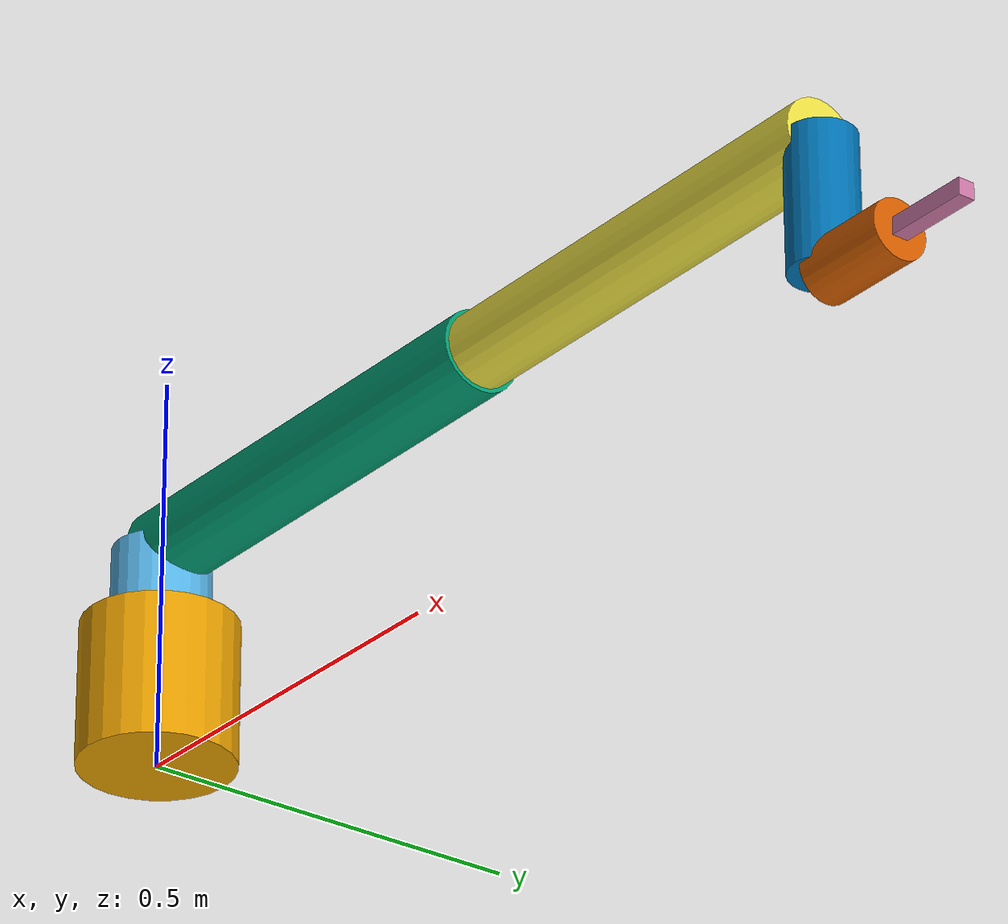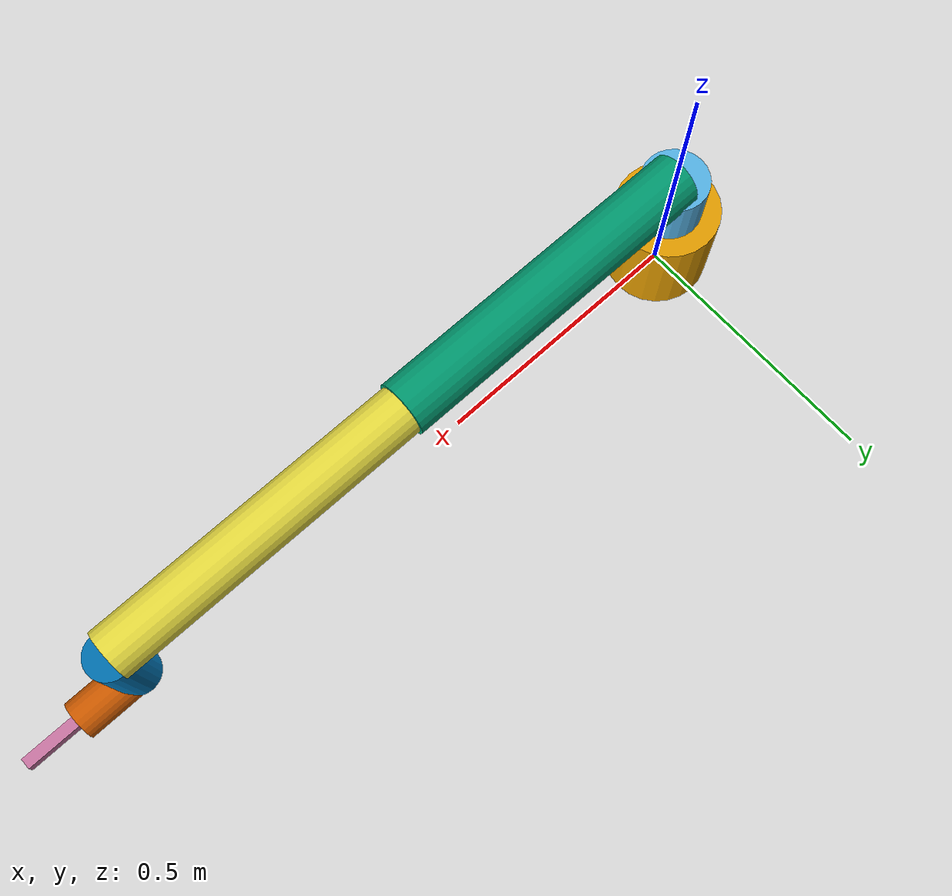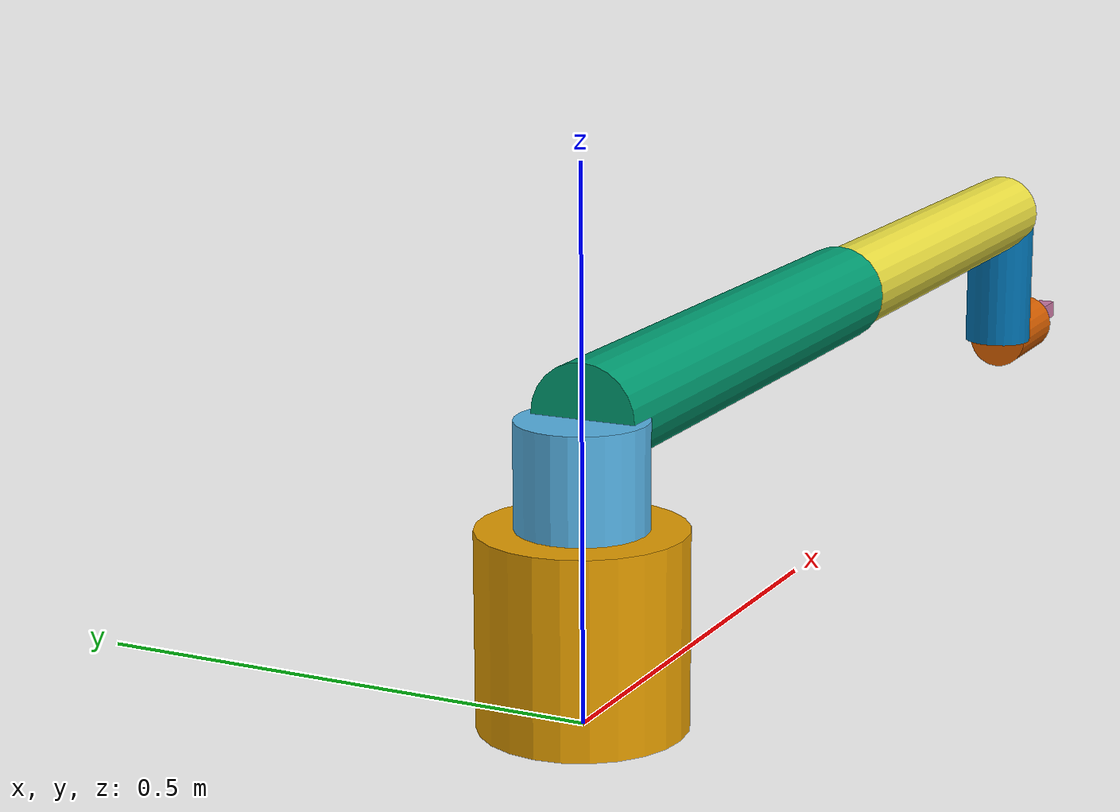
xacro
<?xml version="1.0"?>
<robot xmlns:xacro="http://www.ros.org/wiki/xacro" name="ur10e_cylinder">
    <xacro:arg name="initial_positions_file" default="initial_positions.yaml" />

    <!-- Import ur10e_cylinder urdf file -->
    <xacro:include filename="$(find ur10e_cylinder)/urdf/ur10e_cylinder.urdf" />

    <!-- Import control_xacro -->
    <xacro:include filename="ur10e_cylinder.ros2_control.xacro" />

    <xacro:ur10e_cylinder_ros2_control name="FakeSystem" initial_positions_file="$(arg initial_positions_file)"/>

</robot>

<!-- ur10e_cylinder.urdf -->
<robot name="ur10e_cylinder">

  <!-- ================= BASE ================= -->
  <link name="base_link">
    <visual>
      <geometry>
        <cylinder length="0.18" radius="0.095"/>
      </geometry>
      <origin xyz="0 0 0.09"/>
    </visual>
    <collision>
      <geometry>
        <cylinder length="0.18" radius="0.095"/>
      </geometry>
      <origin xyz="0 0 0.09"/>
    </collision>
  </link>

  <!-- ================= JOINT 1 ================= -->
  <joint name="shoulder_pan_joint" type="revolute">
    <parent link="base_link"/>
    <child link="link1"/>
    <origin xyz="0 0 0.127" rpy="0 0 0"/>
    <axis xyz="0 0 1"/>
    <limit effort="100" velocity="1.0" lower="-6.28" upper="6.28"/>
  </joint>

  <link name="link1">
    <visual>
      <geometry>
        <cylinder length="0.15" radius="0.06"/>
      </geometry>
      <origin xyz="0 0 0.075"/>
    </visual>
    <collision>
      <geometry>
        <cylinder length="0.15" radius="0.06"/>
      </geometry>
      <origin xyz="0 0 0.075"/>
    </collision>
  </link>

  <!-- ================= JOINT 2 ================= -->
  <joint name="shoulder_lift_joint" type="revolute">
    <parent link="link1"/>
    <child link="link2"/>
    <origin xyz="0 0 0.15" rpy="0 1.5708 0"/>
    <axis xyz="0 1 0"/>
    <limit effort="100" velocity="1.0" lower="-3.14" upper="3.14"/>
  </joint>

  <!-- Upper Arm -->
  <link name="link2">
    <visual>
      <geometry>
        <cylinder length="0.612" radius="0.05"/>
      </geometry>
      <origin xyz="0 0 0.306"/>
    </visual>
    <collision>
      <geometry>
        <cylinder length="0.612" radius="0.05"/>
      </geometry>
      <origin xyz="0 0 0.306"/>
    </collision>
  </link>

  <!-- ================= JOINT 3 ================= -->
  <joint name="elbow_joint" type="revolute">
    <parent link="link2"/>
    <child link="link3"/>
    <origin xyz="0 0 0.612" rpy="0 0 0"/>
    <axis xyz="0 1 0"/>
    <limit effort="100" velocity="1.0" lower="-3.14" upper="3.14"/>
  </joint>

  <!-- Forearm -->
  <link name="link3">
    <visual>
      <geometry>
        <cylinder length="0.572" radius="0.045"/>
      </geometry>
      <origin xyz="0 0 0.286"/>
    </visual>
    <collision>
      <geometry>
        <cylinder length="0.572" radius="0.045"/>
      </geometry>
      <origin xyz="0 0 0.286"/>
    </collision>
  </link>

  <!-- ================= JOINT 4 ================= -->
  <joint name="wrist_1_joint" type="revolute">
    <parent link="link3"/>
    <child link="link4"/>
    <origin xyz="0 0 0.572" rpy="0 1.5708 0"/>
    <axis xyz="0 1 0"/>
    <limit effort="50" velocity="1.0" lower="-6.28" upper="6.28"/>
  </joint>

  <link name="link4">
    <visual>
      <geometry>
        <cylinder length="0.163" radius="0.04"/>
      </geometry>
      <origin xyz="0 0 0.0815"/>
    </visual>
    <collision>
      <geometry>
        <cylinder length="0.163" radius="0.04"/>
      </geometry>
      <origin xyz="0 0 0.0815"/>
    </collision>
  </link>

  <!-- ================= JOINT 5 ================= -->
  <joint name="wrist_2_joint" type="revolute">
    <parent link="link4"/>
    <child link="link5"/>
    <origin xyz="0 0 0.163" rpy="0 -1.5708 0"/>
    <axis xyz="1 0 0"/>
    <limit effort="50" velocity="1.0" lower="-6.28" upper="6.28"/>
  </joint>

  <link name="link5">
    <visual>
      <geometry>
        <cylinder length="0.115" radius="0.035"/>
      </geometry>
      <origin xyz="0 0 0.0575"/>
    </visual>
    <collision>
      <geometry>
        <cylinder length="0.115" radius="0.035"/>
      </geometry>
      <origin xyz="0 0 0.0575"/>
    </collision>
  </link>

  <!-- ================= JOINT 6 ================= -->
  <joint name="wrist_3_joint" type="revolute">
    <parent link="link5"/>
    <child link="tool0"/>
    <origin xyz="0 0 0.115" rpy="0 0 0"/>
    <axis xyz="0 0 1"/>
    <limit effort="50" velocity="1.0" lower="-6.28" upper="6.28"/>
  </joint>

  <!-- End Effector -->
  <link name="tool0">
    <visual>
      <geometry>
        <box size="0.02 0.02 0.1"/>
      </geometry>
      <origin xyz="0 0 0.05"/>
    </visual>

    <collision>
      <geometry>
        <box size="0.02 0.02 0.1"/>
      </geometry>
      <origin xyz="0 0 0.05"/>
    </collision>
  </link>

</robot>
